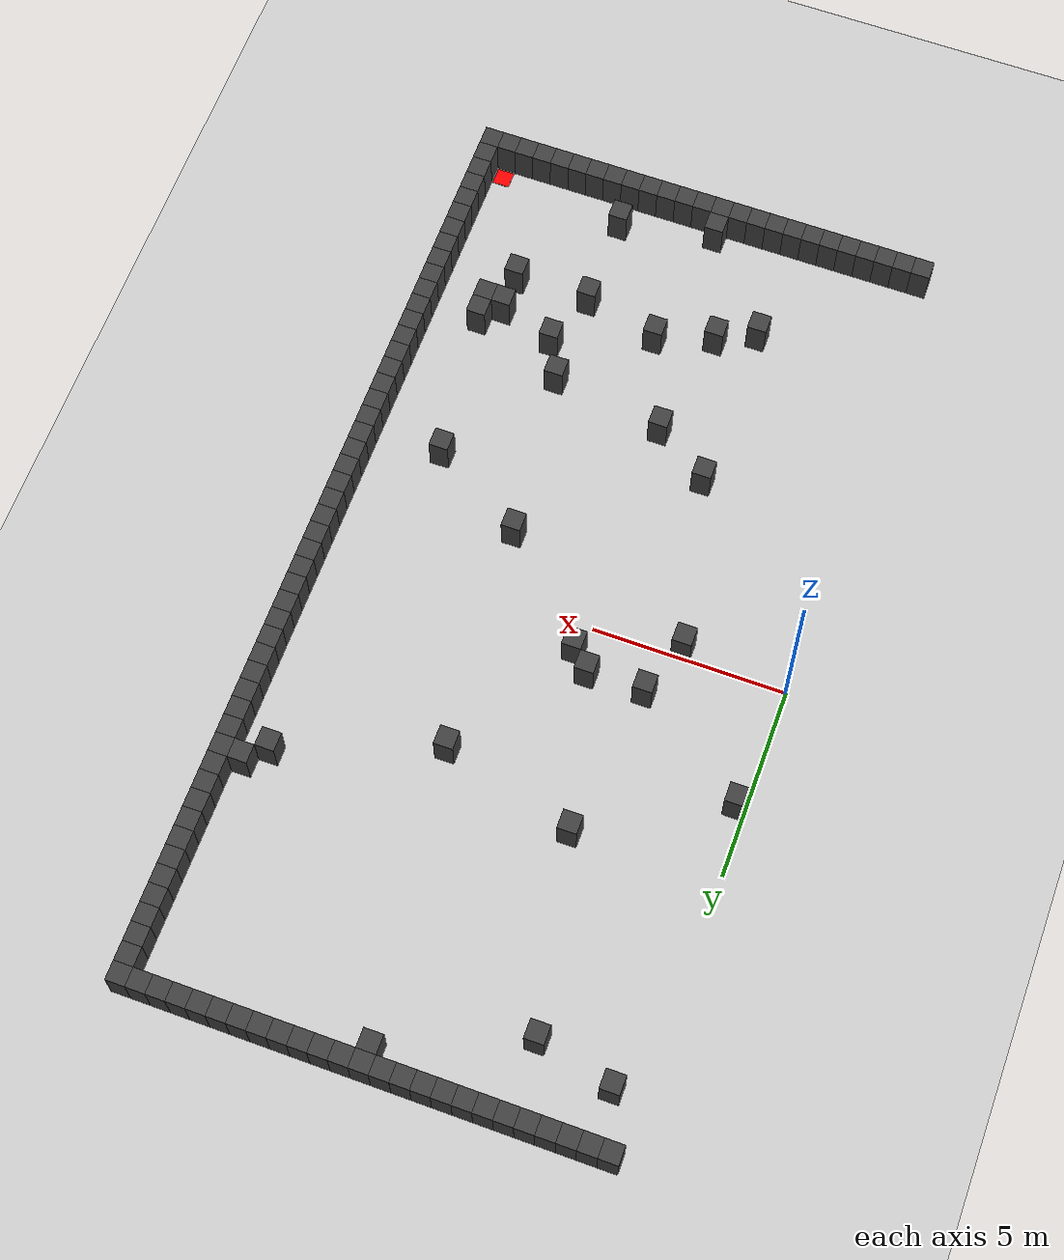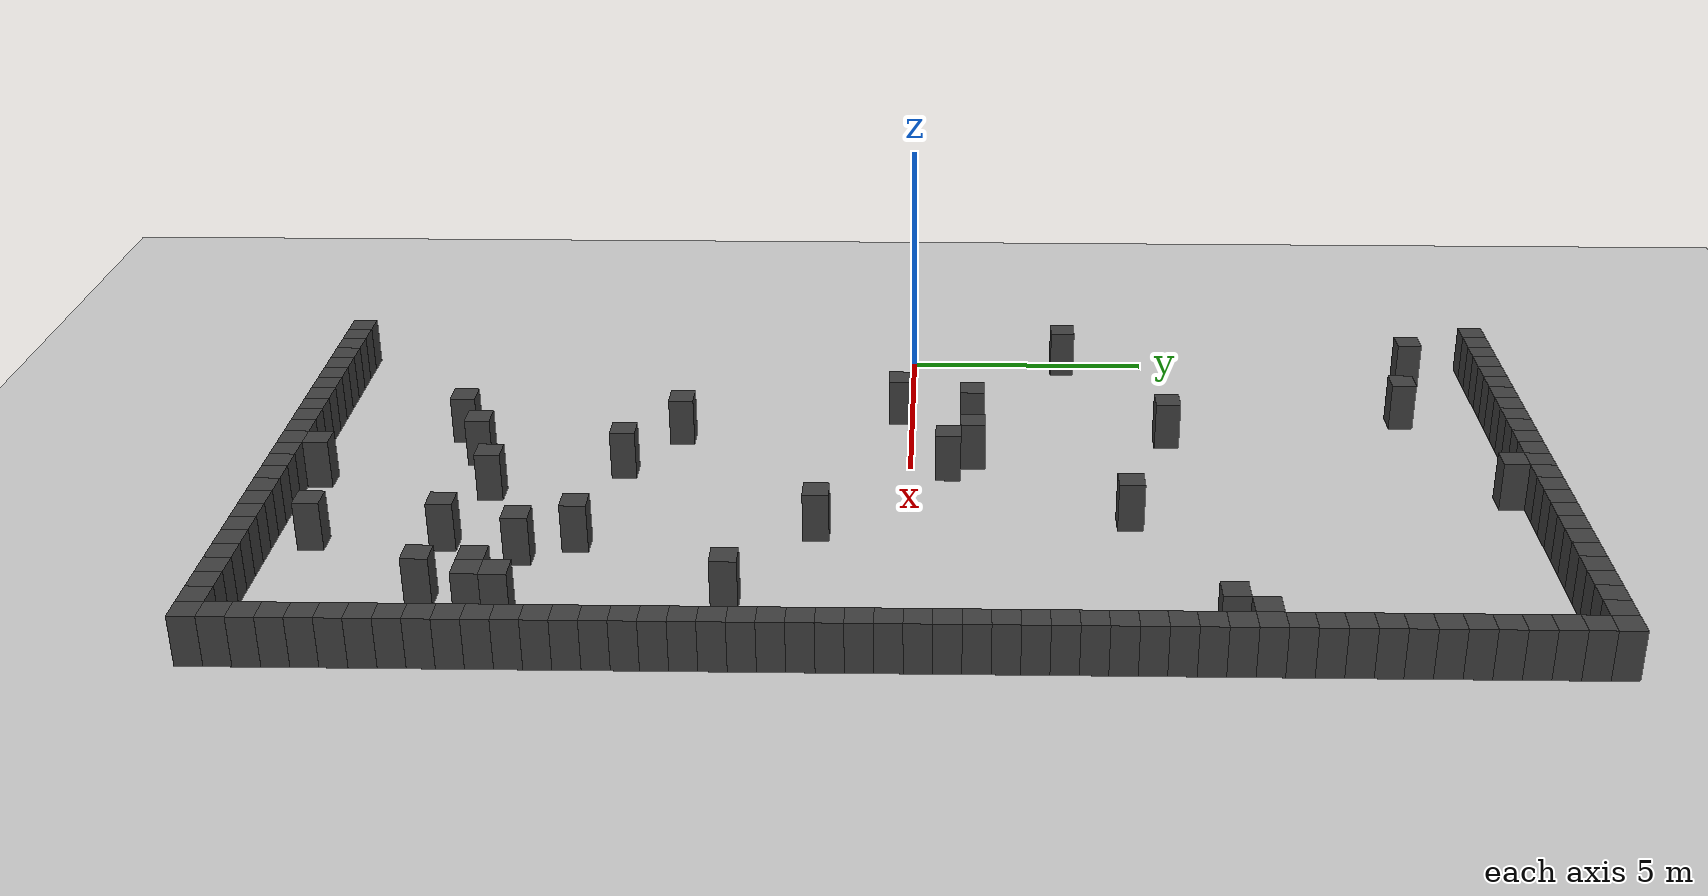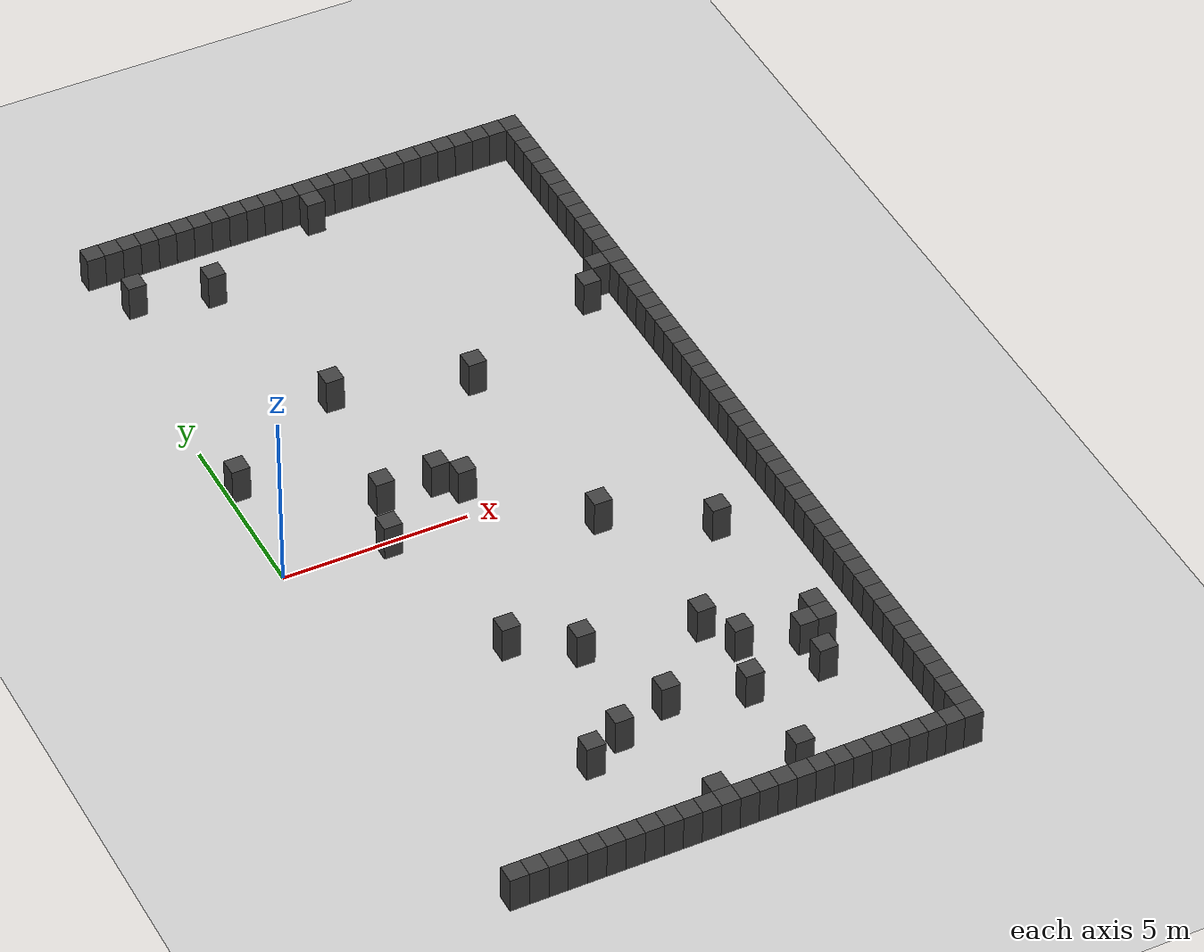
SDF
<sdf version="1.7">
 <world name="map_59">
  <model name="ground_plane">
   <static>true</static>
   <link name="link">
    <collision name="collision">
     <geometry><plane><normal>0 0 1</normal><size>200 200</size></plane></geometry>
    </collision>
    <visual name="visual">
     <geometry><plane><normal>0 0 1</normal><size>200 200</size></plane></geometry>
     <material><ambient>0.8 0.8 0.8 1</ambient><diffuse>0.8 0.8 0.8 1</diffuse></material>
    </visual>
   </link>
  </model>
  <model name="maze_environment">
   <static>true</static>
   <link name="wall_25">
    <pose>0.250 12.250 0.500 0 0 0</pose>
    <collision name="col"><geometry><box><size>0.5 0.5 1.0</size></box></geometry></collision>
    <visual name="vis">
     <geometry><box><size>0.5 0.5 1.0</size></box></geometry>
     <material><ambient>0.15 0.15 0.15 1</ambient><diffuse>0.25 0.25 0.25 1</diffuse></material>
    </visual>
   </link>
   <link name="wall_26">
    <pose>0.750 12.250 0.500 0 0 0</pose>
    <collision name="col"><geometry><box><size>0.5 0.5 1.0</size></box></geometry></collision>
    <visual name="vis">
     <geometry><box><size>0.5 0.5 1.0</size></box></geometry>
     <material><ambient>0.15 0.15 0.15 1</ambient><diffuse>0.25 0.25 0.25 1</diffuse></material>
    </visual>
   </link>
   <link name="wall_27">
    <pose>1.250 12.250 0.500 0 0 0</pose>
    <collision name="col"><geometry><box><size>0.5 0.5 1.0</size></box></geometry></collision>
    <visual name="vis">
     <geometry><box><size>0.5 0.5 1.0</size></box></geometry>
     <material><ambient>0.15 0.15 0.15 1</ambient><diffuse>0.25 0.25 0.25 1</diffuse></material>
    </visual>
   </link>
   <link name="wall_28">
    <pose>1.750 12.250 0.500 0 0 0</pose>
    <collision name="col"><geometry><box><size>0.5 0.5 1.0</size></box></geometry></collision>
    <visual name="vis">
     <geometry><box><size>0.5 0.5 1.0</size></box></geometry>
     <material><ambient>0.15 0.15 0.15 1</ambient><diffuse>0.25 0.25 0.25 1</diffuse></material>
    </visual>
   </link>
   <link name="wall_29">
    <pose>2.250 12.250 0.500 0 0 0</pose>
    <collision name="col"><geometry><box><size>0.5 0.5 1.0</size></box></geometry></collision>
    <visual name="vis">
     <geometry><box><size>0.5 0.5 1.0</size></box></geometry>
     <material><ambient>0.15 0.15 0.15 1</ambient><diffuse>0.25 0.25 0.25 1</diffuse></material>
    </visual>
   </link>
   <link name="wall_30">
    <pose>2.750 12.250 0.500 0 0 0</pose>
    <collision name="col"><geometry><box><size>0.5 0.5 1.0</size></box></geometry></collision>
    <visual name="vis">
     <geometry><box><size>0.5 0.5 1.0</size></box></geometry>
     <material><ambient>0.15 0.15 0.15 1</ambient><diffuse>0.25 0.25 0.25 1</diffuse></material>
    </visual>
   </link>
   <link name="wall_31">
    <pose>3.250 12.250 0.500 0 0 0</pose>
    <collision name="col"><geometry><box><size>0.5 0.5 1.0</size></box></geometry></collision>
    <visual name="vis">
     <geometry><box><size>0.5 0.5 1.0</size></box></geometry>
     <material><ambient>0.15 0.15 0.15 1</ambient><diffuse>0.25 0.25 0.25 1</diffuse></material>
    </visual>
   </link>
   <link name="wall_32">
    <pose>3.750 12.250 0.500 0 0 0</pose>
    <collision name="col"><geometry><box><size>0.5 0.5 1.0</size></box></geometry></collision>
    <visual name="vis">
     <geometry><box><size>0.5 0.5 1.0</size></box></geometry>
     <material><ambient>0.15 0.15 0.15 1</ambient><diffuse>0.25 0.25 0.25 1</diffuse></material>
    </visual>
   </link>
   <link name="wall_33">
    <pose>4.250 12.250 0.500 0 0 0</pose>
    <collision name="col"><geometry><box><size>0.5 0.5 1.0</size></box></geometry></collision>
    <visual name="vis">
     <geometry><box><size>0.5 0.5 1.0</size></box></geometry>
     <material><ambient>0.15 0.15 0.15 1</ambient><diffuse>0.25 0.25 0.25 1</diffuse></material>
    </visual>
   </link>
   <link name="wall_34">
    <pose>4.750 12.250 0.500 0 0 0</pose>
    <collision name="col"><geometry><box><size>0.5 0.5 1.0</size></box></geometry></collision>
    <visual name="vis">
     <geometry><box><size>0.5 0.5 1.0</size></box></geometry>
     <material><ambient>0.15 0.15 0.15 1</ambient><diffuse>0.25 0.25 0.25 1</diffuse></material>
    </visual>
   </link>
   <link name="wall_35">
    <pose>5.250 12.250 0.500 0 0 0</pose>
    <collision name="col"><geometry><box><size>0.5 0.5 1.0</size></box></geometry></collision>
    <visual name="vis">
     <geometry><box><size>0.5 0.5 1.0</size></box></geometry>
     <material><ambient>0.15 0.15 0.15 1</ambient><diffuse>0.25 0.25 0.25 1</diffuse></material>
    </visual>
   </link>
   <link name="wall_36">
    <pose>5.750 12.250 0.500 0 0 0</pose>
    <collision name="col"><geometry><box><size>0.5 0.5 1.0</size></box></geometry></collision>
    <visual name="vis">
     <geometry><box><size>0.5 0.5 1.0</size></box></geometry>
     <material><ambient>0.15 0.15 0.15 1</ambient><diffuse>0.25 0.25 0.25 1</diffuse></material>
    </visual>
   </link>
   <link name="wall_37">
    <pose>6.250 12.250 0.500 0 0 0</pose>
    <collision name="col"><geometry><box><size>0.5 0.5 1.0</size></box></geometry></collision>
    <visual name="vis">
     <geometry><box><size>0.5 0.5 1.0</size></box></geometry>
     <material><ambient>0.15 0.15 0.15 1</ambient><diffuse>0.25 0.25 0.25 1</diffuse></material>
    </visual>
   </link>
   <link name="wall_38">
    <pose>6.750 12.250 0.500 0 0 0</pose>
    <collision name="col"><geometry><box><size>0.5 0.5 1.0</size></box></geometry></collision>
    <visual name="vis">
     <geometry><box><size>0.5 0.5 1.0</size></box></geometry>
     <material><ambient>0.15 0.15 0.15 1</ambient><diffuse>0.25 0.25 0.25 1</diffuse></material>
    </visual>
   </link>
   <link name="wall_39">
    <pose>7.250 12.250 0.500 0 0 0</pose>
    <collision name="col"><geometry><box><size>0.5 0.5 1.0</size></box></geometry></collision>
    <visual name="vis">
     <geometry><box><size>0.5 0.5 1.0</size></box></geometry>
     <material><ambient>0.15 0.15 0.15 1</ambient><diffuse>0.25 0.25 0.25 1</diffuse></material>
    </visual>
   </link>
   <link name="wall_40">
    <pose>7.750 12.250 0.500 0 0 0</pose>
    <collision name="col"><geometry><box><size>0.5 0.5 1.0</size></box></geometry></collision>
    <visual name="vis">
     <geometry><box><size>0.5 0.5 1.0</size></box></geometry>
     <material><ambient>0.15 0.15 0.15 1</ambient><diffuse>0.25 0.25 0.25 1</diffuse></material>
    </visual>
   </link>
   <link name="wall_41">
    <pose>8.250 12.250 0.500 0 0 0</pose>
    <collision name="col"><geometry><box><size>0.5 0.5 1.0</size></box></geometry></collision>
    <visual name="vis">
     <geometry><box><size>0.5 0.5 1.0</size></box></geometry>
     <material><ambient>0.15 0.15 0.15 1</ambient><diffuse>0.25 0.25 0.25 1</diffuse></material>
    </visual>
   </link>
   <link name="wall_42">
    <pose>8.750 12.250 0.500 0 0 0</pose>
    <collision name="col"><geometry><box><size>0.5 0.5 1.0</size></box></geometry></collision>
    <visual name="vis">
     <geometry><box><size>0.5 0.5 1.0</size></box></geometry>
     <material><ambient>0.15 0.15 0.15 1</ambient><diffuse>0.25 0.25 0.25 1</diffuse></material>
    </visual>
   </link>
   <link name="wall_43">
    <pose>9.250 12.250 0.500 0 0 0</pose>
    <collision name="col"><geometry><box><size>0.5 0.5 1.0</size></box></geometry></collision>
    <visual name="vis">
     <geometry><box><size>0.5 0.5 1.0</size></box></geometry>
     <material><ambient>0.15 0.15 0.15 1</ambient><diffuse>0.25 0.25 0.25 1</diffuse></material>
    </visual>
   </link>
   <link name="wall_44">
    <pose>9.750 12.250 0.500 0 0 0</pose>
    <collision name="col"><geometry><box><size>0.5 0.5 1.0</size></box></geometry></collision>
    <visual name="vis">
     <geometry><box><size>0.5 0.5 1.0</size></box></geometry>
     <material><ambient>0.15 0.15 0.15 1</ambient><diffuse>0.25 0.25 0.25 1</diffuse></material>
    </visual>
   </link>
   <link name="wall_45">
    <pose>10.250 12.250 0.500 0 0 0</pose>
    <collision name="col"><geometry><box><size>0.5 0.5 1.0</size></box></geometry></collision>
    <visual name="vis">
     <geometry><box><size>0.5 0.5 1.0</size></box></geometry>
     <material><ambient>0.15 0.15 0.15 1</ambient><diffuse>0.25 0.25 0.25 1</diffuse></material>
    </visual>
   </link>
   <link name="wall_46">
    <pose>10.750 12.250 0.500 0 0 0</pose>
    <collision name="col"><geometry><box><size>0.5 0.5 1.0</size></box></geometry></collision>
    <visual name="vis">
     <geometry><box><size>0.5 0.5 1.0</size></box></geometry>
     <material><ambient>0.15 0.15 0.15 1</ambient><diffuse>0.25 0.25 0.25 1</diffuse></material>
    </visual>
   </link>
   <link name="wall_47">
    <pose>11.250 12.250 0.500 0 0 0</pose>
    <collision name="col"><geometry><box><size>0.5 0.5 1.0</size></box></geometry></collision>
    <visual name="vis">
     <geometry><box><size>0.5 0.5 1.0</size></box></geometry>
     <material><ambient>0.15 0.15 0.15 1</ambient><diffuse>0.25 0.25 0.25 1</diffuse></material>
    </visual>
   </link>
   <link name="wall_48">
    <pose>11.750 12.250 0.500 0 0 0</pose>
    <collision name="col"><geometry><box><size>0.5 0.5 1.0</size></box></geometry></collision>
    <visual name="vis">
     <geometry><box><size>0.5 0.5 1.0</size></box></geometry>
     <material><ambient>0.15 0.15 0.15 1</ambient><diffuse>0.25 0.25 0.25 1</diffuse></material>
    </visual>
   </link>
   <link name="wall_49">
    <pose>12.250 12.250 0.500 0 0 0</pose>
    <collision name="col"><geometry><box><size>0.5 0.5 1.0</size></box></geometry></collision>
    <visual name="vis">
     <geometry><box><size>0.5 0.5 1.0</size></box></geometry>
     <material><ambient>0.15 0.15 0.15 1</ambient><diffuse>0.25 0.25 0.25 1</diffuse></material>
    </visual>
   </link>
   <link name="wall_51">
    <pose>6.250 11.750 0.500 0 0 0</pose>
    <collision name="col"><geometry><box><size>0.5 0.5 1.0</size></box></geometry></collision>
    <visual name="vis">
     <geometry><box><size>0.5 0.5 1.0</size></box></geometry>
     <material><ambient>0.15 0.15 0.15 1</ambient><diffuse>0.25 0.25 0.25 1</diffuse></material>
    </visual>
   </link>
   <link name="wall_52">
    <pose>12.250 11.750 0.500 0 0 0</pose>
    <collision name="col"><geometry><box><size>0.5 0.5 1.0</size></box></geometry></collision>
    <visual name="vis">
     <geometry><box><size>0.5 0.5 1.0</size></box></geometry>
     <material><ambient>0.15 0.15 0.15 1</ambient><diffuse>0.25 0.25 0.25 1</diffuse></material>
    </visual>
   </link>
   <link name="wall_55">
    <pose>12.250 11.250 0.500 0 0 0</pose>
    <collision name="col"><geometry><box><size>0.5 0.5 1.0</size></box></geometry></collision>
    <visual name="vis">
     <geometry><box><size>0.5 0.5 1.0</size></box></geometry>
     <material><ambient>0.15 0.15 0.15 1</ambient><diffuse>0.25 0.25 0.25 1</diffuse></material>
    </visual>
   </link>
   <link name="wall_58">
    <pose>0.750 10.750 0.500 0 0 0</pose>
    <collision name="col"><geometry><box><size>0.5 0.5 1.0</size></box></geometry></collision>
    <visual name="vis">
     <geometry><box><size>0.5 0.5 1.0</size></box></geometry>
     <material><ambient>0.15 0.15 0.15 1</ambient><diffuse>0.25 0.25 0.25 1</diffuse></material>
    </visual>
   </link>
   <link name="wall_59">
    <pose>12.250 10.750 0.500 0 0 0</pose>
    <collision name="col"><geometry><box><size>0.5 0.5 1.0</size></box></geometry></collision>
    <visual name="vis">
     <geometry><box><size>0.5 0.5 1.0</size></box></geometry>
     <material><ambient>0.15 0.15 0.15 1</ambient><diffuse>0.25 0.25 0.25 1</diffuse></material>
    </visual>
   </link>
   <link name="wall_61">
    <pose>2.750 10.250 0.500 0 0 0</pose>
    <collision name="col"><geometry><box><size>0.5 0.5 1.0</size></box></geometry></collision>
    <visual name="vis">
     <geometry><box><size>0.5 0.5 1.0</size></box></geometry>
     <material><ambient>0.15 0.15 0.15 1</ambient><diffuse>0.25 0.25 0.25 1</diffuse></material>
    </visual>
   </link>
   <link name="wall_62">
    <pose>12.250 10.250 0.500 0 0 0</pose>
    <collision name="col"><geometry><box><size>0.5 0.5 1.0</size></box></geometry></collision>
    <visual name="vis">
     <geometry><box><size>0.5 0.5 1.0</size></box></geometry>
     <material><ambient>0.15 0.15 0.15 1</ambient><diffuse>0.25 0.25 0.25 1</diffuse></material>
    </visual>
   </link>
   <link name="wall_66">
    <pose>12.250 9.750 0.500 0 0 0</pose>
    <collision name="col"><geometry><box><size>0.5 0.5 1.0</size></box></geometry></collision>
    <visual name="vis">
     <geometry><box><size>0.5 0.5 1.0</size></box></geometry>
     <material><ambient>0.15 0.15 0.15 1</ambient><diffuse>0.25 0.25 0.25 1</diffuse></material>
    </visual>
   </link>
   <link name="wall_68">
    <pose>12.250 9.250 0.500 0 0 0</pose>
    <collision name="col"><geometry><box><size>0.5 0.5 1.0</size></box></geometry></collision>
    <visual name="vis">
     <geometry><box><size>0.5 0.5 1.0</size></box></geometry>
     <material><ambient>0.15 0.15 0.15 1</ambient><diffuse>0.25 0.25 0.25 1</diffuse></material>
    </visual>
   </link>
   <link name="wall_70">
    <pose>12.250 8.750 0.500 0 0 0</pose>
    <collision name="col"><geometry><box><size>0.5 0.5 1.0</size></box></geometry></collision>
    <visual name="vis">
     <geometry><box><size>0.5 0.5 1.0</size></box></geometry>
     <material><ambient>0.15 0.15 0.15 1</ambient><diffuse>0.25 0.25 0.25 1</diffuse></material>
    </visual>
   </link>
   <link name="wall_73">
    <pose>12.250 8.250 0.500 0 0 0</pose>
    <collision name="col"><geometry><box><size>0.5 0.5 1.0</size></box></geometry></collision>
    <visual name="vis">
     <geometry><box><size>0.5 0.5 1.0</size></box></geometry>
     <material><ambient>0.15 0.15 0.15 1</ambient><diffuse>0.25 0.25 0.25 1</diffuse></material>
    </visual>
   </link>
   <link name="wall_75">
    <pose>12.250 7.750 0.500 0 0 0</pose>
    <collision name="col"><geometry><box><size>0.5 0.5 1.0</size></box></geometry></collision>
    <visual name="vis">
     <geometry><box><size>0.5 0.5 1.0</size></box></geometry>
     <material><ambient>0.15 0.15 0.15 1</ambient><diffuse>0.25 0.25 0.25 1</diffuse></material>
    </visual>
   </link>
   <link name="wall_78">
    <pose>12.250 7.250 0.500 0 0 0</pose>
    <collision name="col"><geometry><box><size>0.5 0.5 1.0</size></box></geometry></collision>
    <visual name="vis">
     <geometry><box><size>0.5 0.5 1.0</size></box></geometry>
     <material><ambient>0.15 0.15 0.15 1</ambient><diffuse>0.25 0.25 0.25 1</diffuse></material>
    </visual>
   </link>
   <link name="wall_81">
    <pose>12.250 6.750 0.500 0 0 0</pose>
    <collision name="col"><geometry><box><size>0.5 0.5 1.0</size></box></geometry></collision>
    <visual name="vis">
     <geometry><box><size>0.5 0.5 1.0</size></box></geometry>
     <material><ambient>0.15 0.15 0.15 1</ambient><diffuse>0.25 0.25 0.25 1</diffuse></material>
    </visual>
   </link>
   <link name="wall_83">
    <pose>11.750 6.250 0.500 0 0 0</pose>
    <collision name="col"><geometry><box><size>0.5 0.5 1.0</size></box></geometry></collision>
    <visual name="vis">
     <geometry><box><size>0.5 0.5 1.0</size></box></geometry>
     <material><ambient>0.15 0.15 0.15 1</ambient><diffuse>0.25 0.25 0.25 1</diffuse></material>
    </visual>
   </link>
   <link name="wall_84">
    <pose>12.250 6.250 0.500 0 0 0</pose>
    <collision name="col"><geometry><box><size>0.5 0.5 1.0</size></box></geometry></collision>
    <visual name="vis">
     <geometry><box><size>0.5 0.5 1.0</size></box></geometry>
     <material><ambient>0.15 0.15 0.15 1</ambient><diffuse>0.25 0.25 0.25 1</diffuse></material>
    </visual>
   </link>
   <link name="wall_87">
    <pose>11.250 5.750 0.500 0 0 0</pose>
    <collision name="col"><geometry><box><size>0.5 0.5 1.0</size></box></geometry></collision>
    <visual name="vis">
     <geometry><box><size>0.5 0.5 1.0</size></box></geometry>
     <material><ambient>0.15 0.15 0.15 1</ambient><diffuse>0.25 0.25 0.25 1</diffuse></material>
    </visual>
   </link>
   <link name="wall_88">
    <pose>12.250 5.750 0.500 0 0 0</pose>
    <collision name="col"><geometry><box><size>0.5 0.5 1.0</size></box></geometry></collision>
    <visual name="vis">
     <geometry><box><size>0.5 0.5 1.0</size></box></geometry>
     <material><ambient>0.15 0.15 0.15 1</ambient><diffuse>0.25 0.25 0.25 1</diffuse></material>
    </visual>
   </link>
   <link name="wall_90">
    <pose>3.750 5.250 0.500 0 0 0</pose>
    <collision name="col"><geometry><box><size>0.5 0.5 1.0</size></box></geometry></collision>
    <visual name="vis">
     <geometry><box><size>0.5 0.5 1.0</size></box></geometry>
     <material><ambient>0.15 0.15 0.15 1</ambient><diffuse>0.25 0.25 0.25 1</diffuse></material>
    </visual>
   </link>
   <link name="wall_91">
    <pose>12.250 5.250 0.500 0 0 0</pose>
    <collision name="col"><geometry><box><size>0.5 0.5 1.0</size></box></geometry></collision>
    <visual name="vis">
     <geometry><box><size>0.5 0.5 1.0</size></box></geometry>
     <material><ambient>0.15 0.15 0.15 1</ambient><diffuse>0.25 0.25 0.25 1</diffuse></material>
    </visual>
   </link>
   <link name="wall_94">
    <pose>12.250 4.750 0.500 0 0 0</pose>
    <collision name="col"><geometry><box><size>0.5 0.5 1.0</size></box></geometry></collision>
    <visual name="vis">
     <geometry><box><size>0.5 0.5 1.0</size></box></geometry>
     <material><ambient>0.15 0.15 0.15 1</ambient><diffuse>0.25 0.25 0.25 1</diffuse></material>
    </visual>
   </link>
   <link name="wall_97">
    <pose>7.250 4.250 0.500 0 0 0</pose>
    <collision name="col"><geometry><box><size>0.5 0.5 1.0</size></box></geometry></collision>
    <visual name="vis">
     <geometry><box><size>0.5 0.5 1.0</size></box></geometry>
     <material><ambient>0.15 0.15 0.15 1</ambient><diffuse>0.25 0.25 0.25 1</diffuse></material>
    </visual>
   </link>
   <link name="wall_98">
    <pose>12.250 4.250 0.500 0 0 0</pose>
    <collision name="col"><geometry><box><size>0.5 0.5 1.0</size></box></geometry></collision>
    <visual name="vis">
     <geometry><box><size>0.5 0.5 1.0</size></box></geometry>
     <material><ambient>0.15 0.15 0.15 1</ambient><diffuse>0.25 0.25 0.25 1</diffuse></material>
    </visual>
   </link>
   <link name="wall_100">
    <pose>12.250 3.750 0.500 0 0 0</pose>
    <collision name="col"><geometry><box><size>0.5 0.5 1.0</size></box></geometry></collision>
    <visual name="vis">
     <geometry><box><size>0.5 0.5 1.0</size></box></geometry>
     <material><ambient>0.15 0.15 0.15 1</ambient><diffuse>0.25 0.25 0.25 1</diffuse></material>
    </visual>
   </link>
   <link name="wall_102">
    <pose>0.250 3.250 0.500 0 0 0</pose>
    <collision name="col"><geometry><box><size>0.5 0.5 1.0</size></box></geometry></collision>
    <visual name="vis">
     <geometry><box><size>0.5 0.5 1.0</size></box></geometry>
     <material><ambient>0.15 0.15 0.15 1</ambient><diffuse>0.25 0.25 0.25 1</diffuse></material>
    </visual>
   </link>
   <link name="wall_103">
    <pose>12.250 3.250 0.500 0 0 0</pose>
    <collision name="col"><geometry><box><size>0.5 0.5 1.0</size></box></geometry></collision>
    <visual name="vis">
     <geometry><box><size>0.5 0.5 1.0</size></box></geometry>
     <material><ambient>0.15 0.15 0.15 1</ambient><diffuse>0.25 0.25 0.25 1</diffuse></material>
    </visual>
   </link>
   <link name="wall_105">
    <pose>12.250 2.750 0.500 0 0 0</pose>
    <collision name="col"><geometry><box><size>0.5 0.5 1.0</size></box></geometry></collision>
    <visual name="vis">
     <geometry><box><size>0.5 0.5 1.0</size></box></geometry>
     <material><ambient>0.15 0.15 0.15 1</ambient><diffuse>0.25 0.25 0.25 1</diffuse></material>
    </visual>
   </link>
   <link name="wall_107">
    <pose>12.250 2.250 0.500 0 0 0</pose>
    <collision name="col"><geometry><box><size>0.5 0.5 1.0</size></box></geometry></collision>
    <visual name="vis">
     <geometry><box><size>0.5 0.5 1.0</size></box></geometry>
     <material><ambient>0.15 0.15 0.15 1</ambient><diffuse>0.25 0.25 0.25 1</diffuse></material>
    </visual>
   </link>
   <link name="wall_109">
    <pose>12.250 1.750 0.500 0 0 0</pose>
    <collision name="col"><geometry><box><size>0.5 0.5 1.0</size></box></geometry></collision>
    <visual name="vis">
     <geometry><box><size>0.5 0.5 1.0</size></box></geometry>
     <material><ambient>0.15 0.15 0.15 1</ambient><diffuse>0.25 0.25 0.25 1</diffuse></material>
    </visual>
   </link>
   <link name="wall_111">
    <pose>3.250 1.250 0.500 0 0 0</pose>
    <collision name="col"><geometry><box><size>0.5 0.5 1.0</size></box></geometry></collision>
    <visual name="vis">
     <geometry><box><size>0.5 0.5 1.0</size></box></geometry>
     <material><ambient>0.15 0.15 0.15 1</ambient><diffuse>0.25 0.25 0.25 1</diffuse></material>
    </visual>
   </link>
   <link name="wall_112">
    <pose>4.750 1.250 0.500 0 0 0</pose>
    <collision name="col"><geometry><box><size>0.5 0.5 1.0</size></box></geometry></collision>
    <visual name="vis">
     <geometry><box><size>0.5 0.5 1.0</size></box></geometry>
     <material><ambient>0.15 0.15 0.15 1</ambient><diffuse>0.25 0.25 0.25 1</diffuse></material>
    </visual>
   </link>
   <link name="wall_113">
    <pose>12.250 1.250 0.500 0 0 0</pose>
    <collision name="col"><geometry><box><size>0.5 0.5 1.0</size></box></geometry></collision>
    <visual name="vis">
     <geometry><box><size>0.5 0.5 1.0</size></box></geometry>
     <material><ambient>0.15 0.15 0.15 1</ambient><diffuse>0.25 0.25 0.25 1</diffuse></material>
    </visual>
   </link>
   <link name="wall_115">
    <pose>5.250 0.750 0.500 0 0 0</pose>
    <collision name="col"><geometry><box><size>0.5 0.5 1.0</size></box></geometry></collision>
    <visual name="vis">
     <geometry><box><size>0.5 0.5 1.0</size></box></geometry>
     <material><ambient>0.15 0.15 0.15 1</ambient><diffuse>0.25 0.25 0.25 1</diffuse></material>
    </visual>
   </link>
   <link name="wall_116">
    <pose>12.250 0.750 0.500 0 0 0</pose>
    <collision name="col"><geometry><box><size>0.5 0.5 1.0</size></box></geometry></collision>
    <visual name="vis">
     <geometry><box><size>0.5 0.5 1.0</size></box></geometry>
     <material><ambient>0.15 0.15 0.15 1</ambient><diffuse>0.25 0.25 0.25 1</diffuse></material>
    </visual>
   </link>
   <link name="wall_118">
    <pose>12.250 0.250 0.500 0 0 0</pose>
    <collision name="col"><geometry><box><size>0.5 0.5 1.0</size></box></geometry></collision>
    <visual name="vis">
     <geometry><box><size>0.5 0.5 1.0</size></box></geometry>
     <material><ambient>0.15 0.15 0.15 1</ambient><diffuse>0.25 0.25 0.25 1</diffuse></material>
    </visual>
   </link>
   <link name="wall_122">
    <pose>2.750 -0.250 0.500 0 0 0</pose>
    <collision name="col"><geometry><box><size>0.5 0.5 1.0</size></box></geometry></collision>
    <visual name="vis">
     <geometry><box><size>0.5 0.5 1.0</size></box></geometry>
     <material><ambient>0.15 0.15 0.15 1</ambient><diffuse>0.25 0.25 0.25 1</diffuse></material>
    </visual>
   </link>
   <link name="wall_123">
    <pose>12.250 -0.250 0.500 0 0 0</pose>
    <collision name="col"><geometry><box><size>0.5 0.5 1.0</size></box></geometry></collision>
    <visual name="vis">
     <geometry><box><size>0.5 0.5 1.0</size></box></geometry>
     <material><ambient>0.15 0.15 0.15 1</ambient><diffuse>0.25 0.25 0.25 1</diffuse></material>
    </visual>
   </link>
   <link name="wall_125">
    <pose>12.250 -0.750 0.500 0 0 0</pose>
    <collision name="col"><geometry><box><size>0.5 0.5 1.0</size></box></geometry></collision>
    <visual name="vis">
     <geometry><box><size>0.5 0.5 1.0</size></box></geometry>
     <material><ambient>0.15 0.15 0.15 1</ambient><diffuse>0.25 0.25 0.25 1</diffuse></material>
    </visual>
   </link>
   <link name="wall_127">
    <pose>12.250 -1.250 0.500 0 0 0</pose>
    <collision name="col"><geometry><box><size>0.5 0.5 1.0</size></box></geometry></collision>
    <visual name="vis">
     <geometry><box><size>0.5 0.5 1.0</size></box></geometry>
     <material><ambient>0.15 0.15 0.15 1</ambient><diffuse>0.25 0.25 0.25 1</diffuse></material>
    </visual>
   </link>
   <link name="wall_130">
    <pose>7.750 -1.750 0.500 0 0 0</pose>
    <collision name="col"><geometry><box><size>0.5 0.5 1.0</size></box></geometry></collision>
    <visual name="vis">
     <geometry><box><size>0.5 0.5 1.0</size></box></geometry>
     <material><ambient>0.15 0.15 0.15 1</ambient><diffuse>0.25 0.25 0.25 1</diffuse></material>
    </visual>
   </link>
   <link name="wall_131">
    <pose>12.250 -1.750 0.500 0 0 0</pose>
    <collision name="col"><geometry><box><size>0.5 0.5 1.0</size></box></geometry></collision>
    <visual name="vis">
     <geometry><box><size>0.5 0.5 1.0</size></box></geometry>
     <material><ambient>0.15 0.15 0.15 1</ambient><diffuse>0.25 0.25 0.25 1</diffuse></material>
    </visual>
   </link>
   <link name="wall_134">
    <pose>12.250 -2.250 0.500 0 0 0</pose>
    <collision name="col"><geometry><box><size>0.5 0.5 1.0</size></box></geometry></collision>
    <visual name="vis">
     <geometry><box><size>0.5 0.5 1.0</size></box></geometry>
     <material><ambient>0.15 0.15 0.15 1</ambient><diffuse>0.25 0.25 0.25 1</diffuse></material>
    </visual>
   </link>
   <link name="wall_137">
    <pose>12.250 -2.750 0.500 0 0 0</pose>
    <collision name="col"><geometry><box><size>0.5 0.5 1.0</size></box></geometry></collision>
    <visual name="vis">
     <geometry><box><size>0.5 0.5 1.0</size></box></geometry>
     <material><ambient>0.15 0.15 0.15 1</ambient><diffuse>0.25 0.25 0.25 1</diffuse></material>
    </visual>
   </link>
   <link name="wall_139">
    <pose>10.250 -3.250 0.500 0 0 0</pose>
    <collision name="col"><geometry><box><size>0.5 0.5 1.0</size></box></geometry></collision>
    <visual name="vis">
     <geometry><box><size>0.5 0.5 1.0</size></box></geometry>
     <material><ambient>0.15 0.15 0.15 1</ambient><diffuse>0.25 0.25 0.25 1</diffuse></material>
    </visual>
   </link>
   <link name="wall_140">
    <pose>12.250 -3.250 0.500 0 0 0</pose>
    <collision name="col"><geometry><box><size>0.5 0.5 1.0</size></box></geometry></collision>
    <visual name="vis">
     <geometry><box><size>0.5 0.5 1.0</size></box></geometry>
     <material><ambient>0.15 0.15 0.15 1</ambient><diffuse>0.25 0.25 0.25 1</diffuse></material>
    </visual>
   </link>
   <link name="wall_143">
    <pose>12.250 -3.750 0.500 0 0 0</pose>
    <collision name="col"><geometry><box><size>0.5 0.5 1.0</size></box></geometry></collision>
    <visual name="vis">
     <geometry><box><size>0.5 0.5 1.0</size></box></geometry>
     <material><ambient>0.15 0.15 0.15 1</ambient><diffuse>0.25 0.25 0.25 1</diffuse></material>
    </visual>
   </link>
   <link name="wall_148">
    <pose>12.250 -4.250 0.500 0 0 0</pose>
    <collision name="col"><geometry><box><size>0.5 0.5 1.0</size></box></geometry></collision>
    <visual name="vis">
     <geometry><box><size>0.5 0.5 1.0</size></box></geometry>
     <material><ambient>0.15 0.15 0.15 1</ambient><diffuse>0.25 0.25 0.25 1</diffuse></material>
    </visual>
   </link>
   <link name="wall_150">
    <pose>3.750 -4.750 0.500 0 0 0</pose>
    <collision name="col"><geometry><box><size>0.5 0.5 1.0</size></box></geometry></collision>
    <visual name="vis">
     <geometry><box><size>0.5 0.5 1.0</size></box></geometry>
     <material><ambient>0.15 0.15 0.15 1</ambient><diffuse>0.25 0.25 0.25 1</diffuse></material>
    </visual>
   </link>
   <link name="wall_151">
    <pose>12.250 -4.750 0.500 0 0 0</pose>
    <collision name="col"><geometry><box><size>0.5 0.5 1.0</size></box></geometry></collision>
    <visual name="vis">
     <geometry><box><size>0.5 0.5 1.0</size></box></geometry>
     <material><ambient>0.15 0.15 0.15 1</ambient><diffuse>0.25 0.25 0.25 1</diffuse></material>
    </visual>
   </link>
   <link name="wall_153">
    <pose>12.250 -5.250 0.500 0 0 0</pose>
    <collision name="col"><geometry><box><size>0.5 0.5 1.0</size></box></geometry></collision>
    <visual name="vis">
     <geometry><box><size>0.5 0.5 1.0</size></box></geometry>
     <material><ambient>0.15 0.15 0.15 1</ambient><diffuse>0.25 0.25 0.25 1</diffuse></material>
    </visual>
   </link>
   <link name="wall_155">
    <pose>5.250 -5.750 0.500 0 0 0</pose>
    <collision name="col"><geometry><box><size>0.5 0.5 1.0</size></box></geometry></collision>
    <visual name="vis">
     <geometry><box><size>0.5 0.5 1.0</size></box></geometry>
     <material><ambient>0.15 0.15 0.15 1</ambient><diffuse>0.25 0.25 0.25 1</diffuse></material>
    </visual>
   </link>
   <link name="wall_156">
    <pose>12.250 -5.750 0.500 0 0 0</pose>
    <collision name="col"><geometry><box><size>0.5 0.5 1.0</size></box></geometry></collision>
    <visual name="vis">
     <geometry><box><size>0.5 0.5 1.0</size></box></geometry>
     <material><ambient>0.15 0.15 0.15 1</ambient><diffuse>0.25 0.25 0.25 1</diffuse></material>
    </visual>
   </link>
   <link name="wall_158">
    <pose>8.250 -6.250 0.500 0 0 0</pose>
    <collision name="col"><geometry><box><size>0.5 0.5 1.0</size></box></geometry></collision>
    <visual name="vis">
     <geometry><box><size>0.5 0.5 1.0</size></box></geometry>
     <material><ambient>0.15 0.15 0.15 1</ambient><diffuse>0.25 0.25 0.25 1</diffuse></material>
    </visual>
   </link>
   <link name="wall_159">
    <pose>12.250 -6.250 0.500 0 0 0</pose>
    <collision name="col"><geometry><box><size>0.5 0.5 1.0</size></box></geometry></collision>
    <visual name="vis">
     <geometry><box><size>0.5 0.5 1.0</size></box></geometry>
     <material><ambient>0.15 0.15 0.15 1</ambient><diffuse>0.25 0.25 0.25 1</diffuse></material>
    </visual>
   </link>
   <link name="wall_162">
    <pose>12.250 -6.750 0.500 0 0 0</pose>
    <collision name="col"><geometry><box><size>0.5 0.5 1.0</size></box></geometry></collision>
    <visual name="vis">
     <geometry><box><size>0.5 0.5 1.0</size></box></geometry>
     <material><ambient>0.15 0.15 0.15 1</ambient><diffuse>0.25 0.25 0.25 1</diffuse></material>
    </visual>
   </link>
   <link name="wall_164">
    <pose>8.750 -7.250 0.500 0 0 0</pose>
    <collision name="col"><geometry><box><size>0.5 0.5 1.0</size></box></geometry></collision>
    <visual name="vis">
     <geometry><box><size>0.5 0.5 1.0</size></box></geometry>
     <material><ambient>0.15 0.15 0.15 1</ambient><diffuse>0.25 0.25 0.25 1</diffuse></material>
    </visual>
   </link>
   <link name="wall_165">
    <pose>10.750 -7.250 0.500 0 0 0</pose>
    <collision name="col"><geometry><box><size>0.5 0.5 1.0</size></box></geometry></collision>
    <visual name="vis">
     <geometry><box><size>0.5 0.5 1.0</size></box></geometry>
     <material><ambient>0.15 0.15 0.15 1</ambient><diffuse>0.25 0.25 0.25 1</diffuse></material>
    </visual>
   </link>
   <link name="wall_166">
    <pose>12.250 -7.250 0.500 0 0 0</pose>
    <collision name="col"><geometry><box><size>0.5 0.5 1.0</size></box></geometry></collision>
    <visual name="vis">
     <geometry><box><size>0.5 0.5 1.0</size></box></geometry>
     <material><ambient>0.15 0.15 0.15 1</ambient><diffuse>0.25 0.25 0.25 1</diffuse></material>
    </visual>
   </link>
   <link name="wall_169">
    <pose>10.250 -7.750 0.500 0 0 0</pose>
    <collision name="col"><geometry><box><size>0.5 0.5 1.0</size></box></geometry></collision>
    <visual name="vis">
     <geometry><box><size>0.5 0.5 1.0</size></box></geometry>
     <material><ambient>0.15 0.15 0.15 1</ambient><diffuse>0.25 0.25 0.25 1</diffuse></material>
    </visual>
   </link>
   <link name="wall_170">
    <pose>10.750 -7.750 0.500 0 0 0</pose>
    <collision name="col"><geometry><box><size>0.5 0.5 1.0</size></box></geometry></collision>
    <visual name="vis">
     <geometry><box><size>0.5 0.5 1.0</size></box></geometry>
     <material><ambient>0.15 0.15 0.15 1</ambient><diffuse>0.25 0.25 0.25 1</diffuse></material>
    </visual>
   </link>
   <link name="wall_171">
    <pose>12.250 -7.750 0.500 0 0 0</pose>
    <collision name="col"><geometry><box><size>0.5 0.5 1.0</size></box></geometry></collision>
    <visual name="vis">
     <geometry><box><size>0.5 0.5 1.0</size></box></geometry>
     <material><ambient>0.15 0.15 0.15 1</ambient><diffuse>0.25 0.25 0.25 1</diffuse></material>
    </visual>
   </link>
   <link name="wall_173">
    <pose>6.250 -8.250 0.500 0 0 0</pose>
    <collision name="col"><geometry><box><size>0.5 0.5 1.0</size></box></geometry></collision>
    <visual name="vis">
     <geometry><box><size>0.5 0.5 1.0</size></box></geometry>
     <material><ambient>0.15 0.15 0.15 1</ambient><diffuse>0.25 0.25 0.25 1</diffuse></material>
    </visual>
   </link>
   <link name="wall_174">
    <pose>12.250 -8.250 0.500 0 0 0</pose>
    <collision name="col"><geometry><box><size>0.5 0.5 1.0</size></box></geometry></collision>
    <visual name="vis">
     <geometry><box><size>0.5 0.5 1.0</size></box></geometry>
     <material><ambient>0.15 0.15 0.15 1</ambient><diffuse>0.25 0.25 0.25 1</diffuse></material>
    </visual>
   </link>
   <link name="wall_178">
    <pose>4.750 -8.750 0.500 0 0 0</pose>
    <collision name="col"><geometry><box><size>0.5 0.5 1.0</size></box></geometry></collision>
    <visual name="vis">
     <geometry><box><size>0.5 0.5 1.0</size></box></geometry>
     <material><ambient>0.15 0.15 0.15 1</ambient><diffuse>0.25 0.25 0.25 1</diffuse></material>
    </visual>
   </link>
   <link name="wall_179">
    <pose>8.250 -8.750 0.500 0 0 0</pose>
    <collision name="col"><geometry><box><size>0.5 0.5 1.0</size></box></geometry></collision>
    <visual name="vis">
     <geometry><box><size>0.5 0.5 1.0</size></box></geometry>
     <material><ambient>0.15 0.15 0.15 1</ambient><diffuse>0.25 0.25 0.25 1</diffuse></material>
    </visual>
   </link>
   <link name="wall_180">
    <pose>10.250 -8.750 0.500 0 0 0</pose>
    <collision name="col"><geometry><box><size>0.5 0.5 1.0</size></box></geometry></collision>
    <visual name="vis">
     <geometry><box><size>0.5 0.5 1.0</size></box></geometry>
     <material><ambient>0.15 0.15 0.15 1</ambient><diffuse>0.25 0.25 0.25 1</diffuse></material>
    </visual>
   </link>
   <link name="wall_181">
    <pose>12.250 -8.750 0.500 0 0 0</pose>
    <collision name="col"><geometry><box><size>0.5 0.5 1.0</size></box></geometry></collision>
    <visual name="vis">
     <geometry><box><size>0.5 0.5 1.0</size></box></geometry>
     <material><ambient>0.15 0.15 0.15 1</ambient><diffuse>0.25 0.25 0.25 1</diffuse></material>
    </visual>
   </link>
   <link name="wall_184">
    <pose>3.750 -9.250 0.500 0 0 0</pose>
    <collision name="col"><geometry><box><size>0.5 0.5 1.0</size></box></geometry></collision>
    <visual name="vis">
     <geometry><box><size>0.5 0.5 1.0</size></box></geometry>
     <material><ambient>0.15 0.15 0.15 1</ambient><diffuse>0.25 0.25 0.25 1</diffuse></material>
    </visual>
   </link>
   <link name="wall_185">
    <pose>12.250 -9.250 0.500 0 0 0</pose>
    <collision name="col"><geometry><box><size>0.5 0.5 1.0</size></box></geometry></collision>
    <visual name="vis">
     <geometry><box><size>0.5 0.5 1.0</size></box></geometry>
     <material><ambient>0.15 0.15 0.15 1</ambient><diffuse>0.25 0.25 0.25 1</diffuse></material>
    </visual>
   </link>
   <link name="wall_188">
    <pose>12.250 -9.750 0.500 0 0 0</pose>
    <collision name="col"><geometry><box><size>0.5 0.5 1.0</size></box></geometry></collision>
    <visual name="vis">
     <geometry><box><size>0.5 0.5 1.0</size></box></geometry>
     <material><ambient>0.15 0.15 0.15 1</ambient><diffuse>0.25 0.25 0.25 1</diffuse></material>
    </visual>
   </link>
   <link name="wall_191">
    <pose>12.250 -10.250 0.500 0 0 0</pose>
    <collision name="col"><geometry><box><size>0.5 0.5 1.0</size></box></geometry></collision>
    <visual name="vis">
     <geometry><box><size>0.5 0.5 1.0</size></box></geometry>
     <material><ambient>0.15 0.15 0.15 1</ambient><diffuse>0.25 0.25 0.25 1</diffuse></material>
    </visual>
   </link>
   <link name="wall_193">
    <pose>12.250 -10.750 0.500 0 0 0</pose>
    <collision name="col"><geometry><box><size>0.5 0.5 1.0</size></box></geometry></collision>
    <visual name="vis">
     <geometry><box><size>0.5 0.5 1.0</size></box></geometry>
     <material><ambient>0.15 0.15 0.15 1</ambient><diffuse>0.25 0.25 0.25 1</diffuse></material>
    </visual>
   </link>
   <link name="wall_195">
    <pose>8.250 -11.250 0.500 0 0 0</pose>
    <collision name="col"><geometry><box><size>0.5 0.5 1.0</size></box></geometry></collision>
    <visual name="vis">
     <geometry><box><size>0.5 0.5 1.0</size></box></geometry>
     <material><ambient>0.15 0.15 0.15 1</ambient><diffuse>0.25 0.25 0.25 1</diffuse></material>
    </visual>
   </link>
   <link name="wall_196">
    <pose>12.250 -11.250 0.500 0 0 0</pose>
    <collision name="col"><geometry><box><size>0.5 0.5 1.0</size></box></geometry></collision>
    <visual name="vis">
     <geometry><box><size>0.5 0.5 1.0</size></box></geometry>
     <material><ambient>0.15 0.15 0.15 1</ambient><diffuse>0.25 0.25 0.25 1</diffuse></material>
    </visual>
   </link>
   <link name="wall_199">
    <pose>5.750 -11.750 0.500 0 0 0</pose>
    <collision name="col"><geometry><box><size>0.5 0.5 1.0</size></box></geometry></collision>
    <visual name="vis">
     <geometry><box><size>0.5 0.5 1.0</size></box></geometry>
     <material><ambient>0.15 0.15 0.15 1</ambient><diffuse>0.25 0.25 0.25 1</diffuse></material>
    </visual>
   </link>
   <link name="wall_200">
    <pose>12.250 -11.750 0.500 0 0 0</pose>
    <collision name="col"><geometry><box><size>0.5 0.5 1.0</size></box></geometry></collision>
    <visual name="vis">
     <geometry><box><size>0.5 0.5 1.0</size></box></geometry>
     <material><ambient>0.15 0.15 0.15 1</ambient><diffuse>0.25 0.25 0.25 1</diffuse></material>
    </visual>
   </link>
   <link name="wall_226">
    <pose>0.250 -12.250 0.500 0 0 0</pose>
    <collision name="col"><geometry><box><size>0.5 0.5 1.0</size></box></geometry></collision>
    <visual name="vis">
     <geometry><box><size>0.5 0.5 1.0</size></box></geometry>
     <material><ambient>0.15 0.15 0.15 1</ambient><diffuse>0.25 0.25 0.25 1</diffuse></material>
    </visual>
   </link>
   <link name="wall_227">
    <pose>0.750 -12.250 0.500 0 0 0</pose>
    <collision name="col"><geometry><box><size>0.5 0.5 1.0</size></box></geometry></collision>
    <visual name="vis">
     <geometry><box><size>0.5 0.5 1.0</size></box></geometry>
     <material><ambient>0.15 0.15 0.15 1</ambient><diffuse>0.25 0.25 0.25 1</diffuse></material>
    </visual>
   </link>
   <link name="wall_228">
    <pose>1.250 -12.250 0.500 0 0 0</pose>
    <collision name="col"><geometry><box><size>0.5 0.5 1.0</size></box></geometry></collision>
    <visual name="vis">
     <geometry><box><size>0.5 0.5 1.0</size></box></geometry>
     <material><ambient>0.15 0.15 0.15 1</ambient><diffuse>0.25 0.25 0.25 1</diffuse></material>
    </visual>
   </link>
   <link name="wall_229">
    <pose>1.750 -12.250 0.500 0 0 0</pose>
    <collision name="col"><geometry><box><size>0.5 0.5 1.0</size></box></geometry></collision>
    <visual name="vis">
     <geometry><box><size>0.5 0.5 1.0</size></box></geometry>
     <material><ambient>0.15 0.15 0.15 1</ambient><diffuse>0.25 0.25 0.25 1</diffuse></material>
    </visual>
   </link>
   <link name="wall_230">
    <pose>2.250 -12.250 0.500 0 0 0</pose>
    <collision name="col"><geometry><box><size>0.5 0.5 1.0</size></box></geometry></collision>
    <visual name="vis">
     <geometry><box><size>0.5 0.5 1.0</size></box></geometry>
     <material><ambient>0.15 0.15 0.15 1</ambient><diffuse>0.25 0.25 0.25 1</diffuse></material>
    </visual>
   </link>
   <link name="wall_231">
    <pose>2.750 -12.250 0.500 0 0 0</pose>
    <collision name="col"><geometry><box><size>0.5 0.5 1.0</size></box></geometry></collision>
    <visual name="vis">
     <geometry><box><size>0.5 0.5 1.0</size></box></geometry>
     <material><ambient>0.15 0.15 0.15 1</ambient><diffuse>0.25 0.25 0.25 1</diffuse></material>
    </visual>
   </link>
   <link name="wall_232">
    <pose>3.250 -12.250 0.500 0 0 0</pose>
    <collision name="col"><geometry><box><size>0.5 0.5 1.0</size></box></geometry></collision>
    <visual name="vis">
     <geometry><box><size>0.5 0.5 1.0</size></box></geometry>
     <material><ambient>0.15 0.15 0.15 1</ambient><diffuse>0.25 0.25 0.25 1</diffuse></material>
    </visual>
   </link>
   <link name="wall_233">
    <pose>3.750 -12.250 0.500 0 0 0</pose>
    <collision name="col"><geometry><box><size>0.5 0.5 1.0</size></box></geometry></collision>
    <visual name="vis">
     <geometry><box><size>0.5 0.5 1.0</size></box></geometry>
     <material><ambient>0.15 0.15 0.15 1</ambient><diffuse>0.25 0.25 0.25 1</diffuse></material>
    </visual>
   </link>
   <link name="wall_234">
    <pose>4.250 -12.250 0.500 0 0 0</pose>
    <collision name="col"><geometry><box><size>0.5 0.5 1.0</size></box></geometry></collision>
    <visual name="vis">
     <geometry><box><size>0.5 0.5 1.0</size></box></geometry>
     <material><ambient>0.15 0.15 0.15 1</ambient><diffuse>0.25 0.25 0.25 1</diffuse></material>
    </visual>
   </link>
   <link name="wall_235">
    <pose>4.750 -12.250 0.500 0 0 0</pose>
    <collision name="col"><geometry><box><size>0.5 0.5 1.0</size></box></geometry></collision>
    <visual name="vis">
     <geometry><box><size>0.5 0.5 1.0</size></box></geometry>
     <material><ambient>0.15 0.15 0.15 1</ambient><diffuse>0.25 0.25 0.25 1</diffuse></material>
    </visual>
   </link>
   <link name="wall_236">
    <pose>5.250 -12.250 0.500 0 0 0</pose>
    <collision name="col"><geometry><box><size>0.5 0.5 1.0</size></box></geometry></collision>
    <visual name="vis">
     <geometry><box><size>0.5 0.5 1.0</size></box></geometry>
     <material><ambient>0.15 0.15 0.15 1</ambient><diffuse>0.25 0.25 0.25 1</diffuse></material>
    </visual>
   </link>
   <link name="wall_237">
    <pose>5.750 -12.250 0.500 0 0 0</pose>
    <collision name="col"><geometry><box><size>0.5 0.5 1.0</size></box></geometry></collision>
    <visual name="vis">
     <geometry><box><size>0.5 0.5 1.0</size></box></geometry>
     <material><ambient>0.15 0.15 0.15 1</ambient><diffuse>0.25 0.25 0.25 1</diffuse></material>
    </visual>
   </link>
   <link name="wall_238">
    <pose>6.250 -12.250 0.500 0 0 0</pose>
    <collision name="col"><geometry><box><size>0.5 0.5 1.0</size></box></geometry></collision>
    <visual name="vis">
     <geometry><box><size>0.5 0.5 1.0</size></box></geometry>
     <material><ambient>0.15 0.15 0.15 1</ambient><diffuse>0.25 0.25 0.25 1</diffuse></material>
    </visual>
   </link>
   <link name="wall_239">
    <pose>6.750 -12.250 0.500 0 0 0</pose>
    <collision name="col"><geometry><box><size>0.5 0.5 1.0</size></box></geometry></collision>
    <visual name="vis">
     <geometry><box><size>0.5 0.5 1.0</size></box></geometry>
     <material><ambient>0.15 0.15 0.15 1</ambient><diffuse>0.25 0.25 0.25 1</diffuse></material>
    </visual>
   </link>
   <link name="wall_240">
    <pose>7.250 -12.250 0.500 0 0 0</pose>
    <collision name="col"><geometry><box><size>0.5 0.5 1.0</size></box></geometry></collision>
    <visual name="vis">
     <geometry><box><size>0.5 0.5 1.0</size></box></geometry>
     <material><ambient>0.15 0.15 0.15 1</ambient><diffuse>0.25 0.25 0.25 1</diffuse></material>
    </visual>
   </link>
   <link name="wall_241">
    <pose>7.750 -12.250 0.500 0 0 0</pose>
    <collision name="col"><geometry><box><size>0.5 0.5 1.0</size></box></geometry></collision>
    <visual name="vis">
     <geometry><box><size>0.5 0.5 1.0</size></box></geometry>
     <material><ambient>0.15 0.15 0.15 1</ambient><diffuse>0.25 0.25 0.25 1</diffuse></material>
    </visual>
   </link>
   <link name="wall_242">
    <pose>8.250 -12.250 0.500 0 0 0</pose>
    <collision name="col"><geometry><box><size>0.5 0.5 1.0</size></box></geometry></collision>
    <visual name="vis">
     <geometry><box><size>0.5 0.5 1.0</size></box></geometry>
     <material><ambient>0.15 0.15 0.15 1</ambient><diffuse>0.25 0.25 0.25 1</diffuse></material>
    </visual>
   </link>
   <link name="wall_243">
    <pose>8.750 -12.250 0.500 0 0 0</pose>
    <collision name="col"><geometry><box><size>0.5 0.5 1.0</size></box></geometry></collision>
    <visual name="vis">
     <geometry><box><size>0.5 0.5 1.0</size></box></geometry>
     <material><ambient>0.15 0.15 0.15 1</ambient><diffuse>0.25 0.25 0.25 1</diffuse></material>
    </visual>
   </link>
   <link name="wall_244">
    <pose>9.250 -12.250 0.500 0 0 0</pose>
    <collision name="col"><geometry><box><size>0.5 0.5 1.0</size></box></geometry></collision>
    <visual name="vis">
     <geometry><box><size>0.5 0.5 1.0</size></box></geometry>
     <material><ambient>0.15 0.15 0.15 1</ambient><diffuse>0.25 0.25 0.25 1</diffuse></material>
    </visual>
   </link>
   <link name="wall_245">
    <pose>9.750 -12.250 0.500 0 0 0</pose>
    <collision name="col"><geometry><box><size>0.5 0.5 1.0</size></box></geometry></collision>
    <visual name="vis">
     <geometry><box><size>0.5 0.5 1.0</size></box></geometry>
     <material><ambient>0.15 0.15 0.15 1</ambient><diffuse>0.25 0.25 0.25 1</diffuse></material>
    </visual>
   </link>
   <link name="wall_246">
    <pose>10.250 -12.250 0.500 0 0 0</pose>
    <collision name="col"><geometry><box><size>0.5 0.5 1.0</size></box></geometry></collision>
    <visual name="vis">
     <geometry><box><size>0.5 0.5 1.0</size></box></geometry>
     <material><ambient>0.15 0.15 0.15 1</ambient><diffuse>0.25 0.25 0.25 1</diffuse></material>
    </visual>
   </link>
   <link name="wall_247">
    <pose>10.750 -12.250 0.500 0 0 0</pose>
    <collision name="col"><geometry><box><size>0.5 0.5 1.0</size></box></geometry></collision>
    <visual name="vis">
     <geometry><box><size>0.5 0.5 1.0</size></box></geometry>
     <material><ambient>0.15 0.15 0.15 1</ambient><diffuse>0.25 0.25 0.25 1</diffuse></material>
    </visual>
   </link>
   <link name="wall_248">
    <pose>11.250 -12.250 0.500 0 0 0</pose>
    <collision name="col"><geometry><box><size>0.5 0.5 1.0</size></box></geometry></collision>
    <visual name="vis">
     <geometry><box><size>0.5 0.5 1.0</size></box></geometry>
     <material><ambient>0.15 0.15 0.15 1</ambient><diffuse>0.25 0.25 0.25 1</diffuse></material>
    </visual>
   </link>
   <link name="wall_249">
    <pose>11.750 -12.250 0.500 0 0 0</pose>
    <collision name="col"><geometry><box><size>0.5 0.5 1.0</size></box></geometry></collision>
    <visual name="vis">
     <geometry><box><size>0.5 0.5 1.0</size></box></geometry>
     <material><ambient>0.15 0.15 0.15 1</ambient><diffuse>0.25 0.25 0.25 1</diffuse></material>
    </visual>
   </link>
   <link name="wall_250">
    <pose>12.250 -12.250 0.500 0 0 0</pose>
    <collision name="col"><geometry><box><size>0.5 0.5 1.0</size></box></geometry></collision>
    <visual name="vis">
     <geometry><box><size>0.5 0.5 1.0</size></box></geometry>
     <material><ambient>0.15 0.15 0.15 1</ambient><diffuse>0.25 0.25 0.25 1</diffuse></material>
    </visual>
   </link>
   <link name="goal_zone">
    <pose>11.750 -11.750 0.005 0 0 0</pose>
    <visual name="vis">
     <geometry><box><size>0.45 0.45 0.01</size></box></geometry>
     <material>
      <ambient>1.0 0.0 0.0 1</ambient>
      <diffuse>1.0 0.0 0.0 1</diffuse>
      <emissive>0.60 0.00 0.00 1</emissive>
     </material>
    </visual>
   </link>
  </model>
 </world>
</sdf>
